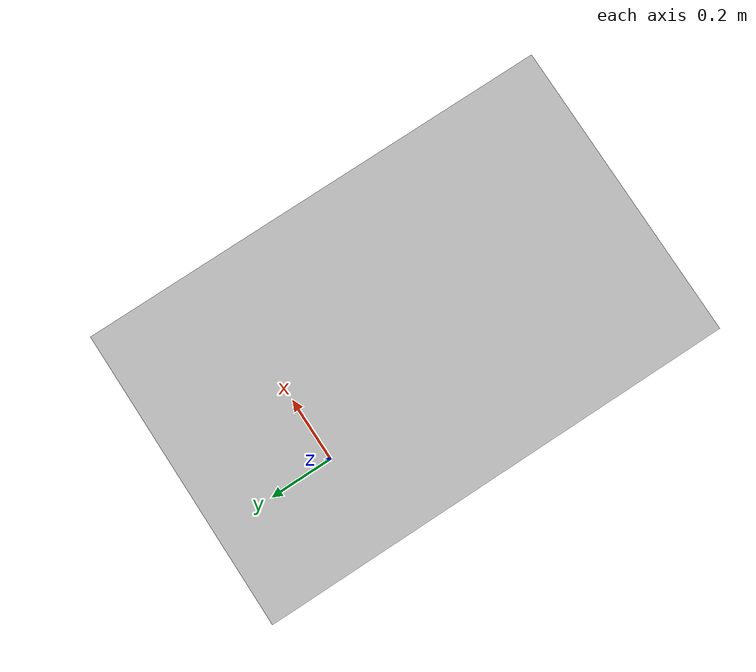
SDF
<?xml version="1.0" ?>
<sdf version="1.5">
  <model name='obs052'>
    <static>true</static>
    <link name="link">
      <collision name='collision'>
        <geometry>
          <mesh>
            <uri>model://obs05/mesh/Obs05.stl</uri>
            <scale>0.01 0.01 0.01</scale>
          </mesh>
        </geometry>
      </collision>

      <visual name='visual'>
        <geometry>
          <mesh>
            <uri>model://obs05/mesh/Obs05.stl</uri>
            <scale>0.01 0.01 0.01</scale>
          </mesh>
        </geometry>
        <material>
          <script>
            <uri>model://obs05/materials/scripts</uri>
            <uri>model://obs05/materials/textures</uri>
            <name>buildMat/Tex5</name>
          </script>
        </material>
      </visual>
    </link>
  </model>
</sdf>
